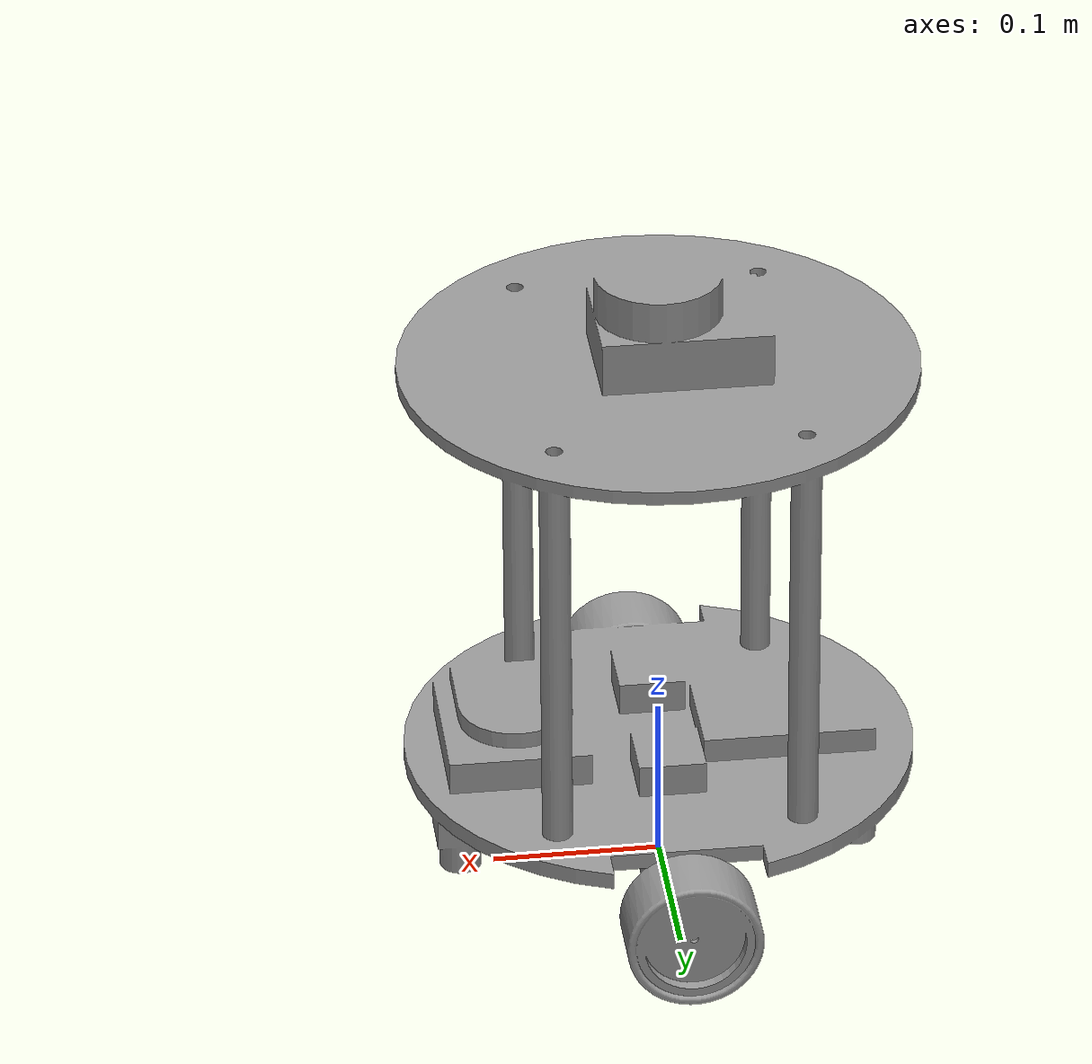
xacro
<?xml version="1.0" ?>

<robot name="servicebot" xmlns:xacro="http://ros.org/wiki/xacro">
<xacro:property name="M_PI" value="3.1415926535897931" />
   <material name="body_color">
    <color rgba="0.6 0.6 0.6 1"/>
  </material>

    <link name="base_footprint"/>

    <joint name="base_joint" type="fixed">
      <origin xyz="0 0 0.08" rpy="0 0 0" />
      <parent link="base_footprint"/>
      <child link="base_link" />
    </joint>

    <link name="base_link">
      <visual>
        <geometry>
          <!-- new mesh -->
          <mesh filename="package://chefbot_description/meshes/ServiceBotWithWheels.stl" scale="0.001 0.001 0.001"/>
        </geometry>
        <material name="body_color" />
        <origin xyz="0 0 -0.08" rpy="0 0 0"/>
      </visual>
    </link>

	  <link name="left_wheel_link">
	      <origin xyz="0 0 0"/>
	  </link>

	  <joint name="left_wheel_joint" type="fixed">
	    <origin xyz="0 ${0.305/2} -0.04" rpy="-${M_PI/2} 0 0"/>
	    <parent link="base_link"/>
	    <child link="left_wheel_link"/>
	    <axis xyz="0 0 1"/>
	  </joint>

	  <link name="right_wheel_link">
	      <origin xyz="0 0 0"/>
	  </link>

	  <joint name="right_wheel_joint" type="fixed">
	    <origin xyz="0 -${0.305/2} -0.04" rpy="${M_PI/2} 0 0"/>
	    <parent link="base_link"/>
	    <child link="right_wheel_link"/>
	    <axis xyz="0 0 1"/>
	  </joint>

    <joint name="imu_joint" type="fixed">
      <origin xyz="0 0 0.03" rpy="0 0 -${M_PI/2}"/>
      <parent link="base_link"/>
      <child link="imu_link"/>
    </joint>

    <link name="imu_link">
        <origin xyz="0 0 0" rpy="0 0 0"/>
    </link>

    <joint name="laser_joint" type="fixed">
      <origin xyz="0 0 0.305" rpy="0 0 ${M_PI}"/>
      <parent link="base_link"/>
      <child link="laser"/>
    </joint>

     <link name="laser">
        <origin xyz="0 0 0" rpy="0 0 0"/>
    </link>

</robot>
